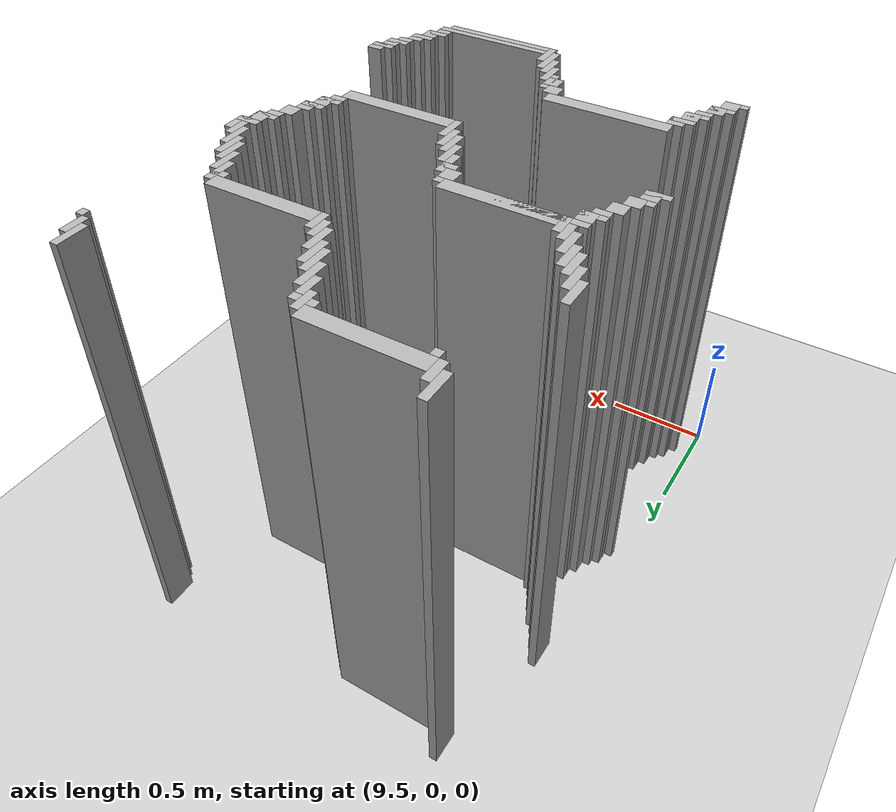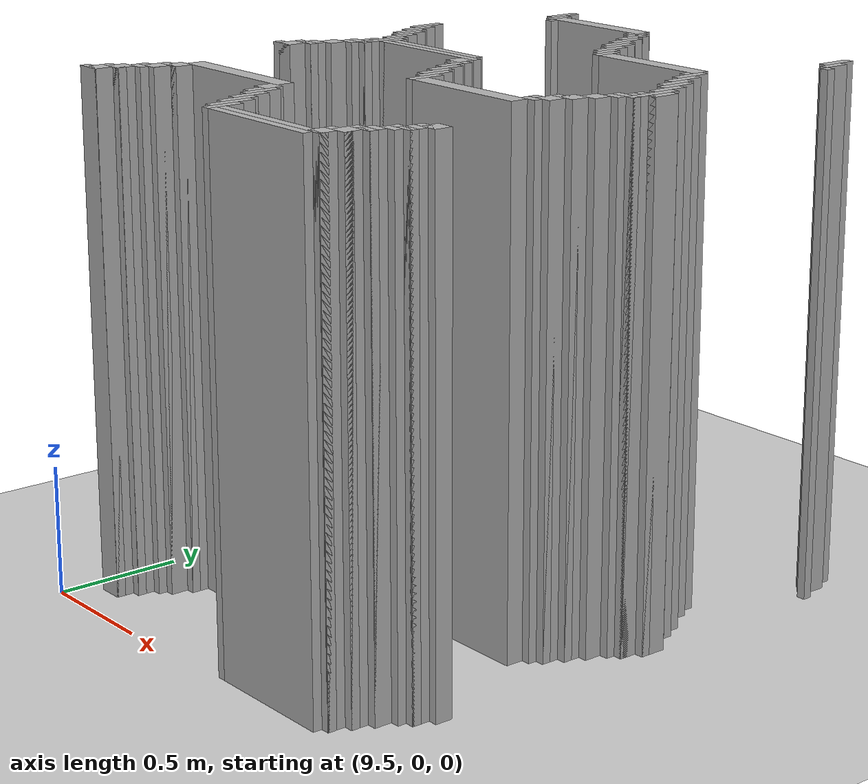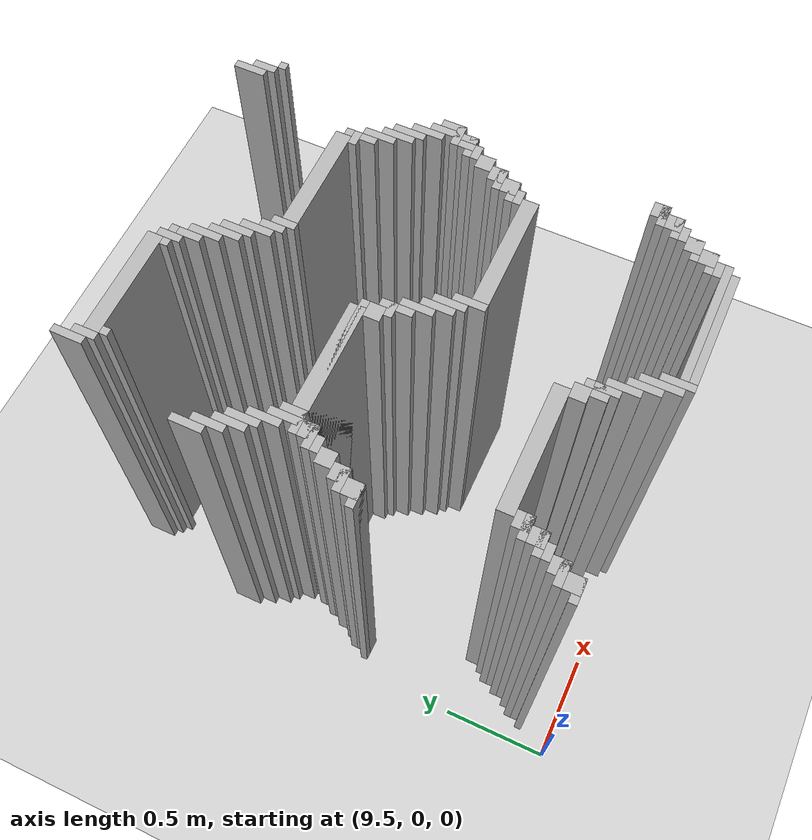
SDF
<sdf version="1.6">
 <world name="slam_world">
  <model name="ground_plane">
   <static>true</static>
   <link name="link">
    <collision name="collision">
     <geometry><plane><normal>0 0 1</normal><size>100 100</size></plane></geometry>
    </collision>
    <visual name="visual">
     <geometry><plane><normal>0 0 1</normal><size>100 100</size></plane></geometry>
     <material>
      <ambient>0.8 0.8 0.8 1</ambient>
      <diffuse>0.8 0.8 0.8 1</diffuse>
      <specular>0.8 0.8 0.8 1</specular>
     </material>
    </visual>
   </link>
  </model>
  <model name="wall_5007">
   <static>true</static>
   <pose>9.762180974477959 2.262180974477958 1.0 0 0 0</pose>
   <link name="link">
    <collision name="collision">
     <geometry><box><size>0.03480278422273782 0.13921113689095127 2.0</size></box></geometry>
    </collision>
    <visual name="visual">
     <geometry><box><size>0.03480278422273782 0.13921113689095127 2.0</size></box></geometry>
     <material><ambient>0.5 0.5 0.5 1</ambient><diffuse>0.7 0.7 0.7 1</diffuse></material>
    </visual>
   </link>
  </model>
  <model name="wall_5008">
   <static>true</static>
   <pose>11.223897911832946 2.262180974477958 1.0 0 0 0</pose>
   <link name="link">
    <collision name="collision">
     <geometry><box><size>0.03480278422273782 0.13921113689095127 2.0</size></box></geometry>
    </collision>
    <visual name="visual">
     <geometry><box><size>0.03480278422273782 0.13921113689095127 2.0</size></box></geometry>
     <material><ambient>0.5 0.5 0.5 1</ambient><diffuse>0.7 0.7 0.7 1</diffuse></material>
    </visual>
   </link>
  </model>
  <model name="wall_5024">
   <static>true</static>
   <pose>9.796983758700696 2.2099767981438516 1.0 0 0 0</pose>
   <link name="link">
    <collision name="collision">
     <geometry><box><size>0.03480278422273782 0.10440835266821345 2.0</size></box></geometry>
    </collision>
    <visual name="visual">
     <geometry><box><size>0.03480278422273782 0.10440835266821345 2.0</size></box></geometry>
     <material><ambient>0.5 0.5 0.5 1</ambient><diffuse>0.7 0.7 0.7 1</diffuse></material>
    </visual>
   </link>
  </model>
  <model name="wall_5025">
   <static>true</static>
   <pose>11.258700696055683 2.2099767981438516 1.0 0 0 0</pose>
   <link name="link">
    <collision name="collision">
     <geometry><box><size>0.03480278422273782 0.10440835266821345 2.0</size></box></geometry>
    </collision>
    <visual name="visual">
     <geometry><box><size>0.03480278422273782 0.10440835266821345 2.0</size></box></geometry>
     <material><ambient>0.5 0.5 0.5 1</ambient><diffuse>0.7 0.7 0.7 1</diffuse></material>
    </visual>
   </link>
  </model>
  <model name="wall_5040">
   <static>true</static>
   <pose>10.058004640371228 2.1925754060324825 1.0 0 0 0</pose>
   <link name="link">
    <collision name="collision">
     <geometry><box><size>0.4872389791183295 0.06960556844547564 2.0</size></box></geometry>
    </collision>
    <visual name="visual">
     <geometry><box><size>0.4872389791183295 0.06960556844547564 2.0</size></box></geometry>
     <material><ambient>0.5 0.5 0.5 1</ambient><diffuse>0.7 0.7 0.7 1</diffuse></material>
    </visual>
   </link>
  </model>
  <model name="wall_5052">
   <static>true</static>
   <pose>10.319025522041763 2.140371229698376 1.0 0 0 0</pose>
   <link name="link">
    <collision name="collision">
     <geometry><box><size>0.03480278422273782 0.10440835266821345 2.0</size></box></geometry>
    </collision>
    <visual name="visual">
     <geometry><box><size>0.03480278422273782 0.10440835266821345 2.0</size></box></geometry>
     <material><ambient>0.5 0.5 0.5 1</ambient><diffuse>0.7 0.7 0.7 1</diffuse></material>
    </visual>
   </link>
  </model>
  <model name="wall_5067">
   <static>true</static>
   <pose>9.831786542923433 2.140371229698376 1.0 0 0 0</pose>
   <link name="link">
    <collision name="collision">
     <geometry><box><size>0.03480278422273782 0.03480278422273782 2.0</size></box></geometry>
    </collision>
    <visual name="visual">
     <geometry><box><size>0.03480278422273782 0.03480278422273782 2.0</size></box></geometry>
     <material><ambient>0.5 0.5 0.5 1</ambient><diffuse>0.7 0.7 0.7 1</diffuse></material>
    </visual>
   </link>
  </model>
  <model name="wall_5068">
   <static>true</static>
   <pose>10.319025522041763 2.140371229698376 1.0 0 0 0</pose>
   <link name="link">
    <collision name="collision">
     <geometry><box><size>0.10440835266821345 0.03480278422273782 2.0</size></box></geometry>
    </collision>
    <visual name="visual">
     <geometry><box><size>0.10440835266821345 0.03480278422273782 2.0</size></box></geometry>
     <material><ambient>0.5 0.5 0.5 1</ambient><diffuse>0.7 0.7 0.7 1</diffuse></material>
    </visual>
   </link>
  </model>
  <model name="wall_5069">
   <static>true</static>
   <pose>11.293503480278423 2.140371229698376 1.0 0 0 0</pose>
   <link name="link">
    <collision name="collision">
     <geometry><box><size>0.03480278422273782 0.03480278422273782 2.0</size></box></geometry>
    </collision>
    <visual name="visual">
     <geometry><box><size>0.03480278422273782 0.03480278422273782 2.0</size></box></geometry>
     <material><ambient>0.5 0.5 0.5 1</ambient><diffuse>0.7 0.7 0.7 1</diffuse></material>
    </visual>
   </link>
  </model>
  <model name="wall_5083">
   <static>true</static>
   <pose>10.3538283062645 2.0707656612529 1.0 0 0 0</pose>
   <link name="link">
    <collision name="collision">
     <geometry><box><size>0.03480278422273782 0.10440835266821345 2.0</size></box></geometry>
    </collision>
    <visual name="visual">
     <geometry><box><size>0.03480278422273782 0.10440835266821345 2.0</size></box></geometry>
     <material><ambient>0.5 0.5 0.5 1</ambient><diffuse>0.7 0.7 0.7 1</diffuse></material>
    </visual>
   </link>
  </model>
  <model name="wall_5097">
   <static>true</static>
   <pose>10.38863109048724 2.0185614849187936 1.0 0 0 0</pose>
   <link name="link">
    <collision name="collision">
     <geometry><box><size>0.03480278422273782 0.13921113689095127 2.0</size></box></geometry>
    </collision>
    <visual name="visual">
     <geometry><box><size>0.03480278422273782 0.13921113689095127 2.0</size></box></geometry>
     <material><ambient>0.5 0.5 0.5 1</ambient><diffuse>0.7 0.7 0.7 1</diffuse></material>
    </visual>
   </link>
  </model>
  <model name="wall_5111">
   <static>true</static>
   <pose>10.423433874709977 1.948955916473318 1.0 0 0 0</pose>
   <link name="link">
    <collision name="collision">
     <geometry><box><size>0.03480278422273782 0.13921113689095127 2.0</size></box></geometry>
    </collision>
    <visual name="visual">
     <geometry><box><size>0.03480278422273782 0.13921113689095127 2.0</size></box></geometry>
     <material><ambient>0.5 0.5 0.5 1</ambient><diffuse>0.7 0.7 0.7 1</diffuse></material>
    </visual>
   </link>
  </model>
  <model name="wall_5125">
   <static>true</static>
   <pose>10.458236658932714 1.91415313225058 1.0 0 0 0</pose>
   <link name="link">
    <collision name="collision">
     <geometry><box><size>0.03480278422273782 0.13921113689095127 2.0</size></box></geometry>
    </collision>
    <visual name="visual">
     <geometry><box><size>0.03480278422273782 0.13921113689095127 2.0</size></box></geometry>
     <material><ambient>0.5 0.5 0.5 1</ambient><diffuse>0.7 0.7 0.7 1</diffuse></material>
    </visual>
   </link>
  </model>
  <model name="wall_5147">
   <static>true</static>
   <pose>10.493039443155451 1.8445475638051043 1.0 0 0 0</pose>
   <link name="link">
    <collision name="collision">
     <geometry><box><size>0.03480278422273782 0.13921113689095127 2.0</size></box></geometry>
    </collision>
    <visual name="visual">
     <geometry><box><size>0.03480278422273782 0.13921113689095127 2.0</size></box></geometry>
     <material><ambient>0.5 0.5 0.5 1</ambient><diffuse>0.7 0.7 0.7 1</diffuse></material>
    </visual>
   </link>
  </model>
  <model name="wall_5166">
   <static>true</static>
   <pose>10.52784222737819 1.7923433874709975 1.0 0 0 0</pose>
   <link name="link">
    <collision name="collision">
     <geometry><box><size>0.03480278422273782 0.10440835266821345 2.0</size></box></geometry>
    </collision>
    <visual name="visual">
     <geometry><box><size>0.03480278422273782 0.10440835266821345 2.0</size></box></geometry>
     <material><ambient>0.5 0.5 0.5 1</ambient><diffuse>0.7 0.7 0.7 1</diffuse></material>
    </visual>
   </link>
  </model>
  <model name="wall_5180">
   <static>true</static>
   <pose>10.562645011600928 1.75754060324826 1.0 0 0 0</pose>
   <link name="link">
    <collision name="collision">
     <geometry><box><size>0.03480278422273782 0.10440835266821345 2.0</size></box></geometry>
    </collision>
    <visual name="visual">
     <geometry><box><size>0.03480278422273782 0.10440835266821345 2.0</size></box></geometry>
     <material><ambient>0.5 0.5 0.5 1</ambient><diffuse>0.7 0.7 0.7 1</diffuse></material>
    </visual>
   </link>
  </model>
  <model name="wall_5191">
   <static>true</static>
   <pose>10.82366589327146 1.740139211136891 1.0 0 0 0</pose>
   <link name="link">
    <collision name="collision">
     <geometry><box><size>0.4872389791183295 0.06960556844547564 2.0</size></box></geometry>
    </collision>
    <visual name="visual">
     <geometry><box><size>0.4872389791183295 0.06960556844547564 2.0</size></box></geometry>
     <material><ambient>0.5 0.5 0.5 1</ambient><diffuse>0.7 0.7 0.7 1</diffuse></material>
    </visual>
   </link>
  </model>
  <model name="wall_5200">
   <static>true</static>
   <pose>9.622969837587007 1.6705336426914152 1.0 0 0 0</pose>
   <link name="link">
    <collision name="collision">
     <geometry><box><size>0.03480278422273782 0.13921113689095127 2.0</size></box></geometry>
    </collision>
    <visual name="visual">
     <geometry><box><size>0.03480278422273782 0.13921113689095127 2.0</size></box></geometry>
     <material><ambient>0.5 0.5 0.5 1</ambient><diffuse>0.7 0.7 0.7 1</diffuse></material>
    </visual>
   </link>
  </model>
  <model name="wall_5201">
   <static>true</static>
   <pose>11.084686774941995 1.6705336426914152 1.0 0 0 0</pose>
   <link name="link">
    <collision name="collision">
     <geometry><box><size>0.03480278422273782 0.13921113689095127 2.0</size></box></geometry>
    </collision>
    <visual name="visual">
     <geometry><box><size>0.03480278422273782 0.13921113689095127 2.0</size></box></geometry>
     <material><ambient>0.5 0.5 0.5 1</ambient><diffuse>0.7 0.7 0.7 1</diffuse></material>
    </visual>
   </link>
  </model>
  <model name="wall_5216">
   <static>true</static>
   <pose>11.067285382830626 1.6879350348027842 1.0 0 0 0</pose>
   <link name="link">
    <collision name="collision">
     <geometry><box><size>0.06960556844547564 0.03480278422273782 2.0</size></box></geometry>
    </collision>
    <visual name="visual">
     <geometry><box><size>0.06960556844547564 0.03480278422273782 2.0</size></box></geometry>
     <material><ambient>0.5 0.5 0.5 1</ambient><diffuse>0.7 0.7 0.7 1</diffuse></material>
    </visual>
   </link>
  </model>
  <model name="wall_5230">
   <static>true</static>
   <pose>9.657772621809745 1.6009280742459395 1.0 0 0 0</pose>
   <link name="link">
    <collision name="collision">
     <geometry><box><size>0.03480278422273782 0.13921113689095127 2.0</size></box></geometry>
    </collision>
    <visual name="visual">
     <geometry><box><size>0.03480278422273782 0.13921113689095127 2.0</size></box></geometry>
     <material><ambient>0.5 0.5 0.5 1</ambient><diffuse>0.7 0.7 0.7 1</diffuse></material>
    </visual>
   </link>
  </model>
  <model name="wall_5231">
   <static>true</static>
   <pose>11.119489559164732 1.6009280742459395 1.0 0 0 0</pose>
   <link name="link">
    <collision name="collision">
     <geometry><box><size>0.03480278422273782 0.13921113689095127 2.0</size></box></geometry>
    </collision>
    <visual name="visual">
     <geometry><box><size>0.03480278422273782 0.13921113689095127 2.0</size></box></geometry>
     <material><ambient>0.5 0.5 0.5 1</ambient><diffuse>0.7 0.7 0.7 1</diffuse></material>
    </visual>
   </link>
  </model>
  <model name="wall_5245">
   <static>true</static>
   <pose>9.692575406032482 1.531322505800464 1.0 0 0 0</pose>
   <link name="link">
    <collision name="collision">
     <geometry><box><size>0.03480278422273782 0.13921113689095127 2.0</size></box></geometry>
    </collision>
    <visual name="visual">
     <geometry><box><size>0.03480278422273782 0.13921113689095127 2.0</size></box></geometry>
     <material><ambient>0.5 0.5 0.5 1</ambient><diffuse>0.7 0.7 0.7 1</diffuse></material>
    </visual>
   </link>
  </model>
  <model name="wall_5246">
   <static>true</static>
   <pose>11.154292343387471 1.531322505800464 1.0 0 0 0</pose>
   <link name="link">
    <collision name="collision">
     <geometry><box><size>0.03480278422273782 0.13921113689095127 2.0</size></box></geometry>
    </collision>
    <visual name="visual">
     <geometry><box><size>0.03480278422273782 0.13921113689095127 2.0</size></box></geometry>
     <material><ambient>0.5 0.5 0.5 1</ambient><diffuse>0.7 0.7 0.7 1</diffuse></material>
    </visual>
   </link>
  </model>
  <model name="wall_5260">
   <static>true</static>
   <pose>9.72737819025522 1.4965197215777262 1.0 0 0 0</pose>
   <link name="link">
    <collision name="collision">
     <geometry><box><size>0.03480278422273782 0.13921113689095127 2.0</size></box></geometry>
    </collision>
    <visual name="visual">
     <geometry><box><size>0.03480278422273782 0.13921113689095127 2.0</size></box></geometry>
     <material><ambient>0.5 0.5 0.5 1</ambient><diffuse>0.7 0.7 0.7 1</diffuse></material>
    </visual>
   </link>
  </model>
  <model name="wall_5261">
   <static>true</static>
   <pose>11.189095127610209 1.4965197215777262 1.0 0 0 0</pose>
   <link name="link">
    <collision name="collision">
     <geometry><box><size>0.03480278422273782 0.13921113689095127 2.0</size></box></geometry>
    </collision>
    <visual name="visual">
     <geometry><box><size>0.03480278422273782 0.13921113689095127 2.0</size></box></geometry>
     <material><ambient>0.5 0.5 0.5 1</ambient><diffuse>0.7 0.7 0.7 1</diffuse></material>
    </visual>
   </link>
  </model>
  <model name="wall_5286">
   <static>true</static>
   <pose>9.762180974477959 1.4269141531322505 1.0 0 0 0</pose>
   <link name="link">
    <collision name="collision">
     <geometry><box><size>0.03480278422273782 0.13921113689095127 2.0</size></box></geometry>
    </collision>
    <visual name="visual">
     <geometry><box><size>0.03480278422273782 0.13921113689095127 2.0</size></box></geometry>
     <material><ambient>0.5 0.5 0.5 1</ambient><diffuse>0.7 0.7 0.7 1</diffuse></material>
    </visual>
   </link>
  </model>
  <model name="wall_5287">
   <static>true</static>
   <pose>11.223897911832946 1.4269141531322505 1.0 0 0 0</pose>
   <link name="link">
    <collision name="collision">
     <geometry><box><size>0.03480278422273782 0.13921113689095127 2.0</size></box></geometry>
    </collision>
    <visual name="visual">
     <geometry><box><size>0.03480278422273782 0.13921113689095127 2.0</size></box></geometry>
     <material><ambient>0.5 0.5 0.5 1</ambient><diffuse>0.7 0.7 0.7 1</diffuse></material>
    </visual>
   </link>
  </model>
  <model name="wall_5308">
   <static>true</static>
   <pose>9.796983758700696 1.322505800464037 1.0 0 0 0</pose>
   <link name="link">
    <collision name="collision">
     <geometry><box><size>0.03480278422273782 0.2088167053364269 2.0</size></box></geometry>
    </collision>
    <visual name="visual">
     <geometry><box><size>0.03480278422273782 0.2088167053364269 2.0</size></box></geometry>
     <material><ambient>0.5 0.5 0.5 1</ambient><diffuse>0.7 0.7 0.7 1</diffuse></material>
    </visual>
   </link>
  </model>
  <model name="wall_5309">
   <static>true</static>
   <pose>11.258700696055683 1.322505800464037 1.0 0 0 0</pose>
   <link name="link">
    <collision name="collision">
     <geometry><box><size>0.03480278422273782 0.2088167053364269 2.0</size></box></geometry>
    </collision>
    <visual name="visual">
     <geometry><box><size>0.03480278422273782 0.2088167053364269 2.0</size></box></geometry>
     <material><ambient>0.5 0.5 0.5 1</ambient><diffuse>0.7 0.7 0.7 1</diffuse></material>
    </visual>
   </link>
  </model>
  <model name="wall_5318">
   <static>true</static>
   <pose>9.831786542923433 1.339907192575406 1.0 0 0 0</pose>
   <link name="link">
    <collision name="collision">
     <geometry><box><size>0.03480278422273782 0.10440835266821345 2.0</size></box></geometry>
    </collision>
    <visual name="visual">
     <geometry><box><size>0.03480278422273782 0.10440835266821345 2.0</size></box></geometry>
     <material><ambient>0.5 0.5 0.5 1</ambient><diffuse>0.7 0.7 0.7 1</diffuse></material>
    </visual>
   </link>
  </model>
  <model name="wall_5319">
   <static>true</static>
   <pose>11.293503480278423 1.339907192575406 1.0 0 0 0</pose>
   <link name="link">
    <collision name="collision">
     <geometry><box><size>0.03480278422273782 0.10440835266821345 2.0</size></box></geometry>
    </collision>
    <visual name="visual">
     <geometry><box><size>0.03480278422273782 0.10440835266821345 2.0</size></box></geometry>
     <material><ambient>0.5 0.5 0.5 1</ambient><diffuse>0.7 0.7 0.7 1</diffuse></material>
    </visual>
   </link>
  </model>
  <model name="wall_5333">
   <static>true</static>
   <pose>10.092807424593968 1.322505800464037 1.0 0 0 0</pose>
   <link name="link">
    <collision name="collision">
     <geometry><box><size>0.4872389791183295 0.06960556844547564 2.0</size></box></geometry>
    </collision>
    <visual name="visual">
     <geometry><box><size>0.4872389791183295 0.06960556844547564 2.0</size></box></geometry>
     <material><ambient>0.5 0.5 0.5 1</ambient><diffuse>0.7 0.7 0.7 1</diffuse></material>
    </visual>
   </link>
  </model>
  <model name="wall_5340">
   <static>true</static>
   <pose>10.058004640371228 1.3051044083526682 1.0 0 0 0</pose>
   <link name="link">
    <collision name="collision">
     <geometry><box><size>0.6264501160092807 0.03480278422273782 2.0</size></box></geometry>
    </collision>
    <visual name="visual">
     <geometry><box><size>0.6264501160092807 0.03480278422273782 2.0</size></box></geometry>
     <material><ambient>0.5 0.5 0.5 1</ambient><diffuse>0.7 0.7 0.7 1</diffuse></material>
    </visual>
   </link>
  </model>
  <model name="wall_5341">
   <static>true</static>
   <pose>11.258700696055683 1.3051044083526682 1.0 0 0 0</pose>
   <link name="link">
    <collision name="collision">
     <geometry><box><size>0.10440835266821345 0.03480278422273782 2.0</size></box></geometry>
    </collision>
    <visual name="visual">
     <geometry><box><size>0.10440835266821345 0.03480278422273782 2.0</size></box></geometry>
     <material><ambient>0.5 0.5 0.5 1</ambient><diffuse>0.7 0.7 0.7 1</diffuse></material>
    </visual>
   </link>
  </model>
  <model name="wall_5349">
   <static>true</static>
   <pose>9.779582366589327 1.2529002320185614 1.0 0 0 0</pose>
   <link name="link">
    <collision name="collision">
     <geometry><box><size>0.06960556844547564 0.06960556844547564 2.0</size></box></geometry>
    </collision>
    <visual name="visual">
     <geometry><box><size>0.06960556844547564 0.06960556844547564 2.0</size></box></geometry>
     <material><ambient>0.5 0.5 0.5 1</ambient><diffuse>0.7 0.7 0.7 1</diffuse></material>
    </visual>
   </link>
  </model>
  <model name="wall_5350">
   <static>true</static>
   <pose>10.336426914153131 1.2529002320185614 1.0 0 0 0</pose>
   <link name="link">
    <collision name="collision">
     <geometry><box><size>0.06960556844547564 0.06960556844547564 2.0</size></box></geometry>
    </collision>
    <visual name="visual">
     <geometry><box><size>0.06960556844547564 0.06960556844547564 2.0</size></box></geometry>
     <material><ambient>0.5 0.5 0.5 1</ambient><diffuse>0.7 0.7 0.7 1</diffuse></material>
    </visual>
   </link>
  </model>
  <model name="wall_5351">
   <static>true</static>
   <pose>11.241299303944315 1.2529002320185614 1.0 0 0 0</pose>
   <link name="link">
    <collision name="collision">
     <geometry><box><size>0.06960556844547564 0.06960556844547564 2.0</size></box></geometry>
    </collision>
    <visual name="visual">
     <geometry><box><size>0.06960556844547564 0.06960556844547564 2.0</size></box></geometry>
     <material><ambient>0.5 0.5 0.5 1</ambient><diffuse>0.7 0.7 0.7 1</diffuse></material>
    </visual>
   </link>
  </model>
  <model name="wall_5360">
   <static>true</static>
   <pose>9.762180974477959 1.2354988399071924 1.0 0 0 0</pose>
   <link name="link">
    <collision name="collision">
     <geometry><box><size>0.10440835266821345 0.03480278422273782 2.0</size></box></geometry>
    </collision>
    <visual name="visual">
     <geometry><box><size>0.10440835266821345 0.03480278422273782 2.0</size></box></geometry>
     <material><ambient>0.5 0.5 0.5 1</ambient><diffuse>0.7 0.7 0.7 1</diffuse></material>
    </visual>
   </link>
  </model>
  <model name="wall_5361">
   <static>true</static>
   <pose>10.38863109048724 1.1832946635730859 1.0 0 0 0</pose>
   <link name="link">
    <collision name="collision">
     <geometry><box><size>0.03480278422273782 0.13921113689095127 2.0</size></box></geometry>
    </collision>
    <visual name="visual">
     <geometry><box><size>0.03480278422273782 0.13921113689095127 2.0</size></box></geometry>
     <material><ambient>0.5 0.5 0.5 1</ambient><diffuse>0.7 0.7 0.7 1</diffuse></material>
    </visual>
   </link>
  </model>
  <model name="wall_5362">
   <static>true</static>
   <pose>11.223897911832946 1.2354988399071924 1.0 0 0 0</pose>
   <link name="link">
    <collision name="collision">
     <geometry><box><size>0.10440835266821345 0.03480278422273782 2.0</size></box></geometry>
    </collision>
    <visual name="visual">
     <geometry><box><size>0.10440835266821345 0.03480278422273782 2.0</size></box></geometry>
     <material><ambient>0.5 0.5 0.5 1</ambient><diffuse>0.7 0.7 0.7 1</diffuse></material>
    </visual>
   </link>
  </model>
  <model name="wall_5370">
   <static>true</static>
   <pose>9.744779582366588 1.2006960556844548 1.0 0 0 0</pose>
   <link name="link">
    <collision name="collision">
     <geometry><box><size>0.06960556844547564 0.03480278422273782 2.0</size></box></geometry>
    </collision>
    <visual name="visual">
     <geometry><box><size>0.06960556844547564 0.03480278422273782 2.0</size></box></geometry>
     <material><ambient>0.5 0.5 0.5 1</ambient><diffuse>0.7 0.7 0.7 1</diffuse></material>
    </visual>
   </link>
  </model>
  <model name="wall_5371">
   <static>true</static>
   <pose>10.37122969837587 1.2006960556844548 1.0 0 0 0</pose>
   <link name="link">
    <collision name="collision">
     <geometry><box><size>0.06960556844547564 0.03480278422273782 2.0</size></box></geometry>
    </collision>
    <visual name="visual">
     <geometry><box><size>0.06960556844547564 0.03480278422273782 2.0</size></box></geometry>
     <material><ambient>0.5 0.5 0.5 1</ambient><diffuse>0.7 0.7 0.7 1</diffuse></material>
    </visual>
   </link>
  </model>
  <model name="wall_5372">
   <static>true</static>
   <pose>11.206496519721577 1.2006960556844548 1.0 0 0 0</pose>
   <link name="link">
    <collision name="collision">
     <geometry><box><size>0.06960556844547564 0.03480278422273782 2.0</size></box></geometry>
    </collision>
    <visual name="visual">
     <geometry><box><size>0.06960556844547564 0.03480278422273782 2.0</size></box></geometry>
     <material><ambient>0.5 0.5 0.5 1</ambient><diffuse>0.7 0.7 0.7 1</diffuse></material>
    </visual>
   </link>
  </model>
  <model name="wall_5379">
   <static>true</static>
   <pose>9.70997679814385 1.148491879350348 1.0 0 0 0</pose>
   <link name="link">
    <collision name="collision">
     <geometry><box><size>0.06960556844547564 0.06960556844547564 2.0</size></box></geometry>
    </collision>
    <visual name="visual">
     <geometry><box><size>0.06960556844547564 0.06960556844547564 2.0</size></box></geometry>
     <material><ambient>0.5 0.5 0.5 1</ambient><diffuse>0.7 0.7 0.7 1</diffuse></material>
    </visual>
   </link>
  </model>
  <model name="wall_5380">
   <static>true</static>
   <pose>10.423433874709977 1.1136890951276102 1.0 0 0 0</pose>
   <link name="link">
    <collision name="collision">
     <geometry><box><size>0.03480278422273782 0.13921113689095127 2.0</size></box></geometry>
    </collision>
    <visual name="visual">
     <geometry><box><size>0.03480278422273782 0.13921113689095127 2.0</size></box></geometry>
     <material><ambient>0.5 0.5 0.5 1</ambient><diffuse>0.7 0.7 0.7 1</diffuse></material>
    </visual>
   </link>
  </model>
  <model name="wall_5381">
   <static>true</static>
   <pose>11.17169373549884 1.148491879350348 1.0 0 0 0</pose>
   <link name="link">
    <collision name="collision">
     <geometry><box><size>0.06960556844547564 0.06960556844547564 2.0</size></box></geometry>
    </collision>
    <visual name="visual">
     <geometry><box><size>0.06960556844547564 0.06960556844547564 2.0</size></box></geometry>
     <material><ambient>0.5 0.5 0.5 1</ambient><diffuse>0.7 0.7 0.7 1</diffuse></material>
    </visual>
   </link>
  </model>
  <model name="wall_5390">
   <static>true</static>
   <pose>9.675174013921113 1.0788863109048723 1.0 0 0 0</pose>
   <link name="link">
    <collision name="collision">
     <geometry><box><size>0.06960556844547564 0.06960556844547564 2.0</size></box></geometry>
    </collision>
    <visual name="visual">
     <geometry><box><size>0.06960556844547564 0.06960556844547564 2.0</size></box></geometry>
     <material><ambient>0.5 0.5 0.5 1</ambient><diffuse>0.7 0.7 0.7 1</diffuse></material>
    </visual>
   </link>
  </model>
  <model name="wall_5391">
   <static>true</static>
   <pose>10.458236658932714 1.0440835266821344 1.0 0 0 0</pose>
   <link name="link">
    <collision name="collision">
     <geometry><box><size>0.03480278422273782 0.13921113689095127 2.0</size></box></geometry>
    </collision>
    <visual name="visual">
     <geometry><box><size>0.03480278422273782 0.13921113689095127 2.0</size></box></geometry>
     <material><ambient>0.5 0.5 0.5 1</ambient><diffuse>0.7 0.7 0.7 1</diffuse></material>
    </visual>
   </link>
  </model>
  <model name="wall_5392">
   <static>true</static>
   <pose>11.1368909512761 1.0788863109048723 1.0 0 0 0</pose>
   <link name="link">
    <collision name="collision">
     <geometry><box><size>0.06960556844547564 0.06960556844547564 2.0</size></box></geometry>
    </collision>
    <visual name="visual">
     <geometry><box><size>0.06960556844547564 0.06960556844547564 2.0</size></box></geometry>
     <material><ambient>0.5 0.5 0.5 1</ambient><diffuse>0.7 0.7 0.7 1</diffuse></material>
    </visual>
   </link>
  </model>
  <model name="wall_5401">
   <static>true</static>
   <pose>9.657772621809745 1.0614849187935034 1.0 0 0 0</pose>
   <link name="link">
    <collision name="collision">
     <geometry><box><size>0.10440835266821345 0.03480278422273782 2.0</size></box></geometry>
    </collision>
    <visual name="visual">
     <geometry><box><size>0.10440835266821345 0.03480278422273782 2.0</size></box></geometry>
     <material><ambient>0.5 0.5 0.5 1</ambient><diffuse>0.7 0.7 0.7 1</diffuse></material>
    </visual>
   </link>
  </model>
  <model name="wall_5402">
   <static>true</static>
   <pose>10.493039443155451 1.0092807424593968 1.0 0 0 0</pose>
   <link name="link">
    <collision name="collision">
     <geometry><box><size>0.03480278422273782 0.13921113689095127 2.0</size></box></geometry>
    </collision>
    <visual name="visual">
     <geometry><box><size>0.03480278422273782 0.13921113689095127 2.0</size></box></geometry>
     <material><ambient>0.5 0.5 0.5 1</ambient><diffuse>0.7 0.7 0.7 1</diffuse></material>
    </visual>
   </link>
  </model>
  <model name="wall_5403">
   <static>true</static>
   <pose>11.119489559164732 1.0614849187935034 1.0 0 0 0</pose>
   <link name="link">
    <collision name="collision">
     <geometry><box><size>0.10440835266821345 0.03480278422273782 2.0</size></box></geometry>
    </collision>
    <visual name="visual">
     <geometry><box><size>0.10440835266821345 0.03480278422273782 2.0</size></box></geometry>
     <material><ambient>0.5 0.5 0.5 1</ambient><diffuse>0.7 0.7 0.7 1</diffuse></material>
    </visual>
   </link>
  </model>
  <model name="wall_5410">
   <static>true</static>
   <pose>9.640371229698376 1.0092807424593968 1.0 0 0 0</pose>
   <link name="link">
    <collision name="collision">
     <geometry><box><size>0.06960556844547564 0.06960556844547564 2.0</size></box></geometry>
    </collision>
    <visual name="visual">
     <geometry><box><size>0.06960556844547564 0.06960556844547564 2.0</size></box></geometry>
     <material><ambient>0.5 0.5 0.5 1</ambient><diffuse>0.7 0.7 0.7 1</diffuse></material>
    </visual>
   </link>
  </model>
  <model name="wall_5411">
   <static>true</static>
   <pose>11.102088167053363 1.0092807424593968 1.0 0 0 0</pose>
   <link name="link">
    <collision name="collision">
     <geometry><box><size>0.06960556844547564 0.06960556844547564 2.0</size></box></geometry>
    </collision>
    <visual name="visual">
     <geometry><box><size>0.06960556844547564 0.06960556844547564 2.0</size></box></geometry>
     <material><ambient>0.5 0.5 0.5 1</ambient><diffuse>0.7 0.7 0.7 1</diffuse></material>
    </visual>
   </link>
  </model>
  <model name="wall_5417">
   <static>true</static>
   <pose>9.622969837587007 0.9918793503480278 1.0 0 0 0</pose>
   <link name="link">
    <collision name="collision">
     <geometry><box><size>0.10440835266821345 0.03480278422273782 2.0</size></box></geometry>
    </collision>
    <visual name="visual">
     <geometry><box><size>0.10440835266821345 0.03480278422273782 2.0</size></box></geometry>
     <material><ambient>0.5 0.5 0.5 1</ambient><diffuse>0.7 0.7 0.7 1</diffuse></material>
    </visual>
   </link>
  </model>
  <model name="wall_5418">
   <static>true</static>
   <pose>10.52784222737819 0.9396751740139211 1.0 0 0 0</pose>
   <link name="link">
    <collision name="collision">
     <geometry><box><size>0.03480278422273782 0.13921113689095127 2.0</size></box></geometry>
    </collision>
    <visual name="visual">
     <geometry><box><size>0.03480278422273782 0.13921113689095127 2.0</size></box></geometry>
     <material><ambient>0.5 0.5 0.5 1</ambient><diffuse>0.7 0.7 0.7 1</diffuse></material>
    </visual>
   </link>
  </model>
  <model name="wall_5419">
   <static>true</static>
   <pose>11.084686774941995 0.9918793503480278 1.0 0 0 0</pose>
   <link name="link">
    <collision name="collision">
     <geometry><box><size>0.10440835266821345 0.03480278422273782 2.0</size></box></geometry>
    </collision>
    <visual name="visual">
     <geometry><box><size>0.10440835266821345 0.03480278422273782 2.0</size></box></geometry>
     <material><ambient>0.5 0.5 0.5 1</ambient><diffuse>0.7 0.7 0.7 1</diffuse></material>
    </visual>
   </link>
  </model>
  <model name="wall_5427">
   <static>true</static>
   <pose>11.067285382830626 0.95707656612529 1.0 0 0 0</pose>
   <link name="link">
    <collision name="collision">
     <geometry><box><size>0.06960556844547564 0.03480278422273782 2.0</size></box></geometry>
    </collision>
    <visual name="visual">
     <geometry><box><size>0.06960556844547564 0.03480278422273782 2.0</size></box></geometry>
     <material><ambient>0.5 0.5 0.5 1</ambient><diffuse>0.7 0.7 0.7 1</diffuse></material>
    </visual>
   </link>
  </model>
  <model name="wall_5439">
   <static>true</static>
   <pose>10.806264501160092 0.9048723897911832 1.0 0 0 0</pose>
   <link name="link">
    <collision name="collision">
     <geometry><box><size>0.5220417633410672 0.06960556844547564 2.0</size></box></geometry>
    </collision>
    <visual name="visual">
     <geometry><box><size>0.5220417633410672 0.06960556844547564 2.0</size></box></geometry>
     <material><ambient>0.5 0.5 0.5 1</ambient><diffuse>0.7 0.7 0.7 1</diffuse></material>
    </visual>
   </link>
  </model>
  <model name="wall_5539">
   <static>true</static>
   <pose>10.058004640371228 0.4872389791183295 1.0 0 0 0</pose>
   <link name="link">
    <collision name="collision">
     <geometry><box><size>0.5568445475638051 0.06960556844547564 2.0</size></box></geometry>
    </collision>
    <visual name="visual">
     <geometry><box><size>0.5568445475638051 0.06960556844547564 2.0</size></box></geometry>
     <material><ambient>0.5 0.5 0.5 1</ambient><diffuse>0.7 0.7 0.7 1</diffuse></material>
    </visual>
   </link>
  </model>
  <model name="wall_5556">
   <static>true</static>
   <pose>9.779582366589327 0.4176334106728538 1.0 0 0 0</pose>
   <link name="link">
    <collision name="collision">
     <geometry><box><size>0.06960556844547564 0.06960556844547564 2.0</size></box></geometry>
    </collision>
    <visual name="visual">
     <geometry><box><size>0.06960556844547564 0.06960556844547564 2.0</size></box></geometry>
     <material><ambient>0.5 0.5 0.5 1</ambient><diffuse>0.7 0.7 0.7 1</diffuse></material>
    </visual>
   </link>
  </model>
  <model name="wall_5557">
   <static>true</static>
   <pose>10.336426914153131 0.4176334106728538 1.0 0 0 0</pose>
   <link name="link">
    <collision name="collision">
     <geometry><box><size>0.06960556844547564 0.06960556844547564 2.0</size></box></geometry>
    </collision>
    <visual name="visual">
     <geometry><box><size>0.06960556844547564 0.06960556844547564 2.0</size></box></geometry>
     <material><ambient>0.5 0.5 0.5 1</ambient><diffuse>0.7 0.7 0.7 1</diffuse></material>
    </visual>
   </link>
  </model>
  <model name="wall_5558">
   <static>true</static>
   <pose>11.241299303944315 0.4176334106728538 1.0 0 0 0</pose>
   <link name="link">
    <collision name="collision">
     <geometry><box><size>0.06960556844547564 0.06960556844547564 2.0</size></box></geometry>
    </collision>
    <visual name="visual">
     <geometry><box><size>0.06960556844547564 0.06960556844547564 2.0</size></box></geometry>
     <material><ambient>0.5 0.5 0.5 1</ambient><diffuse>0.7 0.7 0.7 1</diffuse></material>
    </visual>
   </link>
  </model>
  <model name="wall_5576">
   <static>true</static>
   <pose>9.762180974477959 0.4002320185614849 1.0 0 0 0</pose>
   <link name="link">
    <collision name="collision">
     <geometry><box><size>0.10440835266821345 0.03480278422273782 2.0</size></box></geometry>
    </collision>
    <visual name="visual">
     <geometry><box><size>0.10440835266821345 0.03480278422273782 2.0</size></box></geometry>
     <material><ambient>0.5 0.5 0.5 1</ambient><diffuse>0.7 0.7 0.7 1</diffuse></material>
    </visual>
   </link>
  </model>
  <model name="wall_5577">
   <static>true</static>
   <pose>10.38863109048724 0.34802784222737815 1.0 0 0 0</pose>
   <link name="link">
    <collision name="collision">
     <geometry><box><size>0.03480278422273782 0.13921113689095127 2.0</size></box></geometry>
    </collision>
    <visual name="visual">
     <geometry><box><size>0.03480278422273782 0.13921113689095127 2.0</size></box></geometry>
     <material><ambient>0.5 0.5 0.5 1</ambient><diffuse>0.7 0.7 0.7 1</diffuse></material>
    </visual>
   </link>
  </model>
  <model name="wall_5578">
   <static>true</static>
   <pose>11.223897911832946 0.4002320185614849 1.0 0 0 0</pose>
   <link name="link">
    <collision name="collision">
     <geometry><box><size>0.10440835266821345 0.03480278422273782 2.0</size></box></geometry>
    </collision>
    <visual name="visual">
     <geometry><box><size>0.10440835266821345 0.03480278422273782 2.0</size></box></geometry>
     <material><ambient>0.5 0.5 0.5 1</ambient><diffuse>0.7 0.7 0.7 1</diffuse></material>
    </visual>
   </link>
  </model>
  <model name="wall_5596">
   <static>true</static>
   <pose>9.744779582366588 0.34802784222737815 1.0 0 0 0</pose>
   <link name="link">
    <collision name="collision">
     <geometry><box><size>0.06960556844547564 0.06960556844547564 2.0</size></box></geometry>
    </collision>
    <visual name="visual">
     <geometry><box><size>0.06960556844547564 0.06960556844547564 2.0</size></box></geometry>
     <material><ambient>0.5 0.5 0.5 1</ambient><diffuse>0.7 0.7 0.7 1</diffuse></material>
    </visual>
   </link>
  </model>
  <model name="wall_5597">
   <static>true</static>
   <pose>10.37122969837587 0.34802784222737815 1.0 0 0 0</pose>
   <link name="link">
    <collision name="collision">
     <geometry><box><size>0.06960556844547564 0.06960556844547564 2.0</size></box></geometry>
    </collision>
    <visual name="visual">
     <geometry><box><size>0.06960556844547564 0.06960556844547564 2.0</size></box></geometry>
     <material><ambient>0.5 0.5 0.5 1</ambient><diffuse>0.7 0.7 0.7 1</diffuse></material>
    </visual>
   </link>
  </model>
  <model name="wall_5598">
   <static>true</static>
   <pose>11.206496519721577 0.34802784222737815 1.0 0 0 0</pose>
   <link name="link">
    <collision name="collision">
     <geometry><box><size>0.06960556844547564 0.06960556844547564 2.0</size></box></geometry>
    </collision>
    <visual name="visual">
     <geometry><box><size>0.06960556844547564 0.06960556844547564 2.0</size></box></geometry>
     <material><ambient>0.5 0.5 0.5 1</ambient><diffuse>0.7 0.7 0.7 1</diffuse></material>
    </visual>
   </link>
  </model>
  <model name="wall_5616">
   <static>true</static>
   <pose>9.72737819025522 0.3306264501160093 1.0 0 0 0</pose>
   <link name="link">
    <collision name="collision">
     <geometry><box><size>0.10440835266821345 0.03480278422273782 2.0</size></box></geometry>
    </collision>
    <visual name="visual">
     <geometry><box><size>0.10440835266821345 0.03480278422273782 2.0</size></box></geometry>
     <material><ambient>0.5 0.5 0.5 1</ambient><diffuse>0.7 0.7 0.7 1</diffuse></material>
    </visual>
   </link>
  </model>
  <model name="wall_5617">
   <static>true</static>
   <pose>10.423433874709977 0.27842227378190254 1.0 0 0 0</pose>
   <link name="link">
    <collision name="collision">
     <geometry><box><size>0.03480278422273782 0.13921113689095127 2.0</size></box></geometry>
    </collision>
    <visual name="visual">
     <geometry><box><size>0.03480278422273782 0.13921113689095127 2.0</size></box></geometry>
     <material><ambient>0.5 0.5 0.5 1</ambient><diffuse>0.7 0.7 0.7 1</diffuse></material>
    </visual>
   </link>
  </model>
  <model name="wall_5618">
   <static>true</static>
   <pose>11.189095127610209 0.3306264501160093 1.0 0 0 0</pose>
   <link name="link">
    <collision name="collision">
     <geometry><box><size>0.10440835266821345 0.03480278422273782 2.0</size></box></geometry>
    </collision>
    <visual name="visual">
     <geometry><box><size>0.10440835266821345 0.03480278422273782 2.0</size></box></geometry>
     <material><ambient>0.5 0.5 0.5 1</ambient><diffuse>0.7 0.7 0.7 1</diffuse></material>
    </visual>
   </link>
  </model>
  <model name="wall_5629">
   <static>true</static>
   <pose>9.70997679814385 0.29582366589327147 1.0 0 0 0</pose>
   <link name="link">
    <collision name="collision">
     <geometry><box><size>0.06960556844547564 0.03480278422273782 2.0</size></box></geometry>
    </collision>
    <visual name="visual">
     <geometry><box><size>0.06960556844547564 0.03480278422273782 2.0</size></box></geometry>
     <material><ambient>0.5 0.5 0.5 1</ambient><diffuse>0.7 0.7 0.7 1</diffuse></material>
    </visual>
   </link>
  </model>
  <model name="wall_5630">
   <static>true</static>
   <pose>11.17169373549884 0.29582366589327147 1.0 0 0 0</pose>
   <link name="link">
    <collision name="collision">
     <geometry><box><size>0.06960556844547564 0.03480278422273782 2.0</size></box></geometry>
    </collision>
    <visual name="visual">
     <geometry><box><size>0.06960556844547564 0.03480278422273782 2.0</size></box></geometry>
     <material><ambient>0.5 0.5 0.5 1</ambient><diffuse>0.7 0.7 0.7 1</diffuse></material>
    </visual>
   </link>
  </model>
  <model name="wall_5646">
   <static>true</static>
   <pose>9.675174013921113 0.24361948955916474 1.0 0 0 0</pose>
   <link name="link">
    <collision name="collision">
     <geometry><box><size>0.06960556844547564 0.06960556844547564 2.0</size></box></geometry>
    </collision>
    <visual name="visual">
     <geometry><box><size>0.06960556844547564 0.06960556844547564 2.0</size></box></geometry>
     <material><ambient>0.5 0.5 0.5 1</ambient><diffuse>0.7 0.7 0.7 1</diffuse></material>
    </visual>
   </link>
  </model>
  <model name="wall_5647">
   <static>true</static>
   <pose>10.458236658932714 0.2088167053364269 1.0 0 0 0</pose>
   <link name="link">
    <collision name="collision">
     <geometry><box><size>0.03480278422273782 0.13921113689095127 2.0</size></box></geometry>
    </collision>
    <visual name="visual">
     <geometry><box><size>0.03480278422273782 0.13921113689095127 2.0</size></box></geometry>
     <material><ambient>0.5 0.5 0.5 1</ambient><diffuse>0.7 0.7 0.7 1</diffuse></material>
    </visual>
   </link>
  </model>
  <model name="wall_5648">
   <static>true</static>
   <pose>11.1368909512761 0.24361948955916474 1.0 0 0 0</pose>
   <link name="link">
    <collision name="collision">
     <geometry><box><size>0.06960556844547564 0.06960556844547564 2.0</size></box></geometry>
    </collision>
    <visual name="visual">
     <geometry><box><size>0.06960556844547564 0.06960556844547564 2.0</size></box></geometry>
     <material><ambient>0.5 0.5 0.5 1</ambient><diffuse>0.7 0.7 0.7 1</diffuse></material>
    </visual>
   </link>
  </model>
  <model name="wall_5666">
   <static>true</static>
   <pose>9.657772621809745 0.2262180974477958 1.0 0 0 0</pose>
   <link name="link">
    <collision name="collision">
     <geometry><box><size>0.10440835266821345 0.03480278422273782 2.0</size></box></geometry>
    </collision>
    <visual name="visual">
     <geometry><box><size>0.10440835266821345 0.03480278422273782 2.0</size></box></geometry>
     <material><ambient>0.5 0.5 0.5 1</ambient><diffuse>0.7 0.7 0.7 1</diffuse></material>
    </visual>
   </link>
  </model>
  <model name="wall_5667">
   <static>true</static>
   <pose>10.493039443155451 0.15661252900232017 1.0 0 0 0</pose>
   <link name="link">
    <collision name="collision">
     <geometry><box><size>0.03480278422273782 0.17401392111368907 2.0</size></box></geometry>
    </collision>
    <visual name="visual">
     <geometry><box><size>0.03480278422273782 0.17401392111368907 2.0</size></box></geometry>
     <material><ambient>0.5 0.5 0.5 1</ambient><diffuse>0.7 0.7 0.7 1</diffuse></material>
    </visual>
   </link>
  </model>
  <model name="wall_5668">
   <static>true</static>
   <pose>11.119489559164732 0.2262180974477958 1.0 0 0 0</pose>
   <link name="link">
    <collision name="collision">
     <geometry><box><size>0.10440835266821345 0.03480278422273782 2.0</size></box></geometry>
    </collision>
    <visual name="visual">
     <geometry><box><size>0.10440835266821345 0.03480278422273782 2.0</size></box></geometry>
     <material><ambient>0.5 0.5 0.5 1</ambient><diffuse>0.7 0.7 0.7 1</diffuse></material>
    </visual>
   </link>
  </model>
  <model name="wall_5679">
   <static>true</static>
   <pose>9.640371229698376 0.17401392111368907 1.0 0 0 0</pose>
   <link name="link">
    <collision name="collision">
     <geometry><box><size>0.06960556844547564 0.06960556844547564 2.0</size></box></geometry>
    </collision>
    <visual name="visual">
     <geometry><box><size>0.06960556844547564 0.06960556844547564 2.0</size></box></geometry>
     <material><ambient>0.5 0.5 0.5 1</ambient><diffuse>0.7 0.7 0.7 1</diffuse></material>
    </visual>
   </link>
  </model>
  <model name="wall_5680">
   <static>true</static>
   <pose>11.102088167053363 0.17401392111368907 1.0 0 0 0</pose>
   <link name="link">
    <collision name="collision">
     <geometry><box><size>0.06960556844547564 0.06960556844547564 2.0</size></box></geometry>
    </collision>
    <visual name="visual">
     <geometry><box><size>0.06960556844547564 0.06960556844547564 2.0</size></box></geometry>
     <material><ambient>0.5 0.5 0.5 1</ambient><diffuse>0.7 0.7 0.7 1</diffuse></material>
    </visual>
   </link>
  </model>
  <model name="wall_5696">
   <static>true</static>
   <pose>9.622969837587007 0.15661252900232017 1.0 0 0 0</pose>
   <link name="link">
    <collision name="collision">
     <geometry><box><size>0.10440835266821345 0.03480278422273782 2.0</size></box></geometry>
    </collision>
    <visual name="visual">
     <geometry><box><size>0.10440835266821345 0.03480278422273782 2.0</size></box></geometry>
     <material><ambient>0.5 0.5 0.5 1</ambient><diffuse>0.7 0.7 0.7 1</diffuse></material>
    </visual>
   </link>
  </model>
  <model name="wall_5697">
   <static>true</static>
   <pose>10.52784222737819 0.10440835266821345 1.0 0 0 0</pose>
   <link name="link">
    <collision name="collision">
     <geometry><box><size>0.03480278422273782 0.13921113689095127 2.0</size></box></geometry>
    </collision>
    <visual name="visual">
     <geometry><box><size>0.03480278422273782 0.13921113689095127 2.0</size></box></geometry>
     <material><ambient>0.5 0.5 0.5 1</ambient><diffuse>0.7 0.7 0.7 1</diffuse></material>
    </visual>
   </link>
  </model>
  <model name="wall_5698">
   <static>true</static>
   <pose>11.084686774941995 0.15661252900232017 1.0 0 0 0</pose>
   <link name="link">
    <collision name="collision">
     <geometry><box><size>0.10440835266821345 0.03480278422273782 2.0</size></box></geometry>
    </collision>
    <visual name="visual">
     <geometry><box><size>0.10440835266821345 0.03480278422273782 2.0</size></box></geometry>
     <material><ambient>0.5 0.5 0.5 1</ambient><diffuse>0.7 0.7 0.7 1</diffuse></material>
    </visual>
   </link>
  </model>
  <model name="wall_5710">
   <static>true</static>
   <pose>11.067285382830626 0.10440835266821345 1.0 0 0 0</pose>
   <link name="link">
    <collision name="collision">
     <geometry><box><size>0.06960556844547564 0.06960556844547564 2.0</size></box></geometry>
    </collision>
    <visual name="visual">
     <geometry><box><size>0.06960556844547564 0.06960556844547564 2.0</size></box></geometry>
     <material><ambient>0.5 0.5 0.5 1</ambient><diffuse>0.7 0.7 0.7 1</diffuse></material>
    </visual>
   </link>
  </model>
  <model name="wall_5721">
   <static>true</static>
   <pose>10.82366589327146 0.08700696055684454 1.0 0 0 0</pose>
   <link name="link">
    <collision name="collision">
     <geometry><box><size>0.5568445475638051 0.03480278422273782 2.0</size></box></geometry>
    </collision>
    <visual name="visual">
     <geometry><box><size>0.5568445475638051 0.03480278422273782 2.0</size></box></geometry>
     <material><ambient>0.5 0.5 0.5 1</ambient><diffuse>0.7 0.7 0.7 1</diffuse></material>
    </visual>
   </link>
  </model>
  <model name="wall_5731">
   <static>true</static>
   <pose>10.806264501160092 0.052204176334106726 1.0 0 0 0</pose>
   <link name="link">
    <collision name="collision">
     <geometry><box><size>0.5220417633410672 0.03480278422273782 2.0</size></box></geometry>
    </collision>
    <visual name="visual">
     <geometry><box><size>0.5220417633410672 0.03480278422273782 2.0</size></box></geometry>
     <material><ambient>0.5 0.5 0.5 1</ambient><diffuse>0.7 0.7 0.7 1</diffuse></material>
    </visual>
   </link>
  </model>
 </world>
</sdf>
